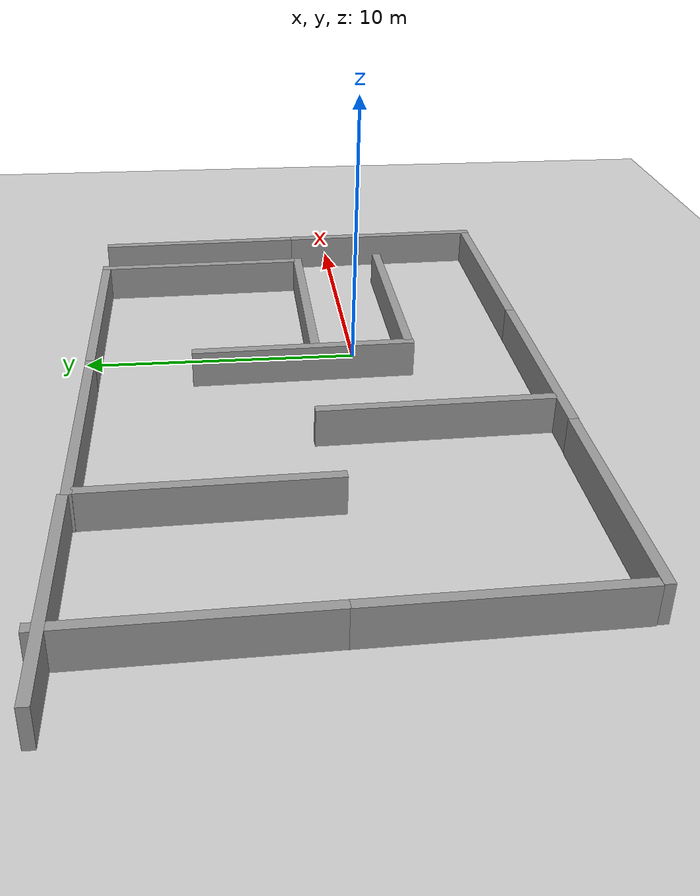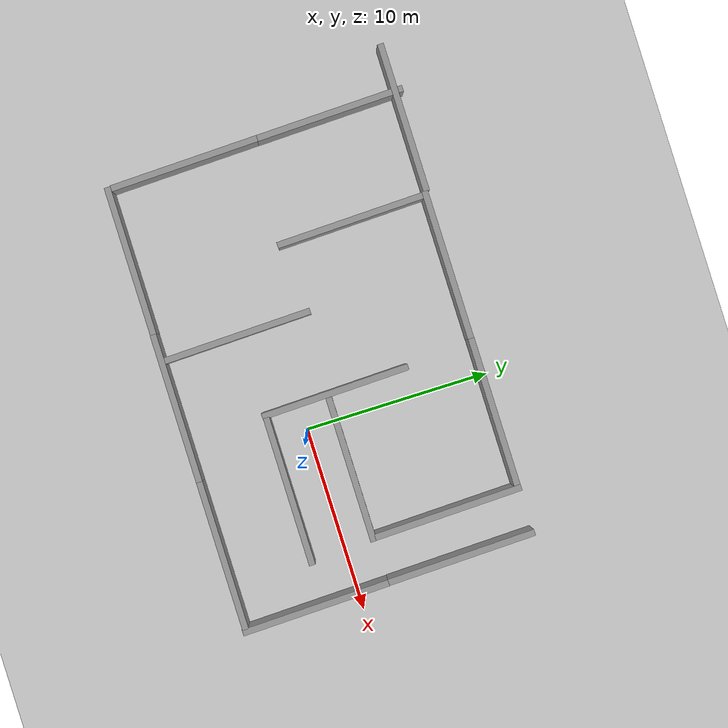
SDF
<sdf version="1.7">
 <world name="default">
  <light name="sun" type="directional">
   <pose>0 0 10 0 -0 0</pose>
   <diffuse>0.8 0.8 0.8 1</diffuse>
   <specular>0.2 0.2 0.2 1</specular>
   <attenuation>
    <range>1000</range>
    <constant>0.9</constant>
    <linear>0.01</linear>
    <quadratic>0.001</quadratic>
   </attenuation>
   <direction>-0.5 0.1 -0.9</direction>
   <spot><inner_angle>0</inner_angle><outer_angle>0</outer_angle><falloff>0</falloff></spot>
  </light>
  <model name="ground_plane">
   <static>1</static>
   <link name="link">
    <collision name="collision">
     <geometry><plane><normal>0 0 1</normal><size>100 100</size></plane></geometry>
     <surface><friction><ode><mu>100</mu><mu2>50</mu2></ode></friction></surface>
    </collision>
    <visual name="visual">
     <cast_shadows>0</cast_shadows>
     <geometry><plane><normal>0 0 1</normal><size>100 100</size></plane></geometry>
     <material>
      <script><uri>file://media/materials/scripts/gazebo.material</uri><name>Gazebo/Grey</name></script>
     </material>
    </visual>
   </link>
  </model>
  <gravity>0 0 -9.8</gravity>
  <magnetic_field>6e-06 2.3e-05 -4.2e-05</magnetic_field>
  <atmosphere type="adiabatic"/>
  <physics type="ode">
   <max_step_size>0.001</max_step_size>
   <real_time_factor>1</real_time_factor>
   <real_time_update_rate>1000</real_time_update_rate>
  </physics>
  <scene><ambient>0.4 0.4 0.4 1</ambient><background>0.7 0.7 0.7 1</background><shadows>1</shadows></scene>
  <audio><device>default</device></audio>
  <spherical_coordinates>
   <surface_model>EARTH_WGS84</surface_model>
   <latitude_deg>0</latitude_deg>
   <longitude_deg>0</longitude_deg>
   <elevation>0</elevation>
   <heading_deg>0</heading_deg>
  </spherical_coordinates>
  <model name="small_map">
   <link name="link_0">
    <inertial>
     <mass>7.16173</mass>
     <inertia><ixx>4.16944</ixx><ixy>0</ixy><ixz>0</ixz><iyy>42.8925</iyy><iyz>0</iyz><izz>38.8602</izz></inertia>
    </inertial>
    <pose>5.41246 -0.214515 -4e-06 0 -0 0</pose>
    <visual name="visual">
     <geometry><box><size>8.06215 0.338937 2.62132</size></box></geometry>
     <material>
      <lighting>1</lighting>
      <script><uri>file://media/materials/scripts/gazebo.material</uri><name>Gazebo/Grey</name></script>
      <shader type="pixel"/>
     </material>
    </visual>
    <collision name="collision">
     <geometry><box><size>8.06215 0.338937 2.62132</size></box></geometry>
     <surface>
      <friction>
       <ode><mu>1</mu><mu2>1</mu2><fdir1>0 0 0</fdir1><slip1>0</slip1><slip2>0</slip2></ode>
       <torsional>
        <coefficient>1</coefficient>
        <patch_radius>0</patch_radius>
        <surface_radius>0</surface_radius>
        <use_patch_radius>1</use_patch_radius>
        <ode><slip>0</slip></ode>
       </torsional>
      </friction>
      <bounce><restitution_coefficient>0</restitution_coefficient><threshold>1e+06</threshold></bounce>
      <contact>
       <collide_without_contact>0</collide_without_contact>
       <collide_without_contact_bitmask>1</collide_without_contact_bitmask>
       <collide_bitmask>1</collide_bitmask>
       <ode>
        <soft_cfm>0</soft_cfm>
        <soft_erp>0.2</soft_erp>
        <kp>1e+13</kp>
        <kd>1</kd>
        <max_vel>0.01</max_vel>
        <min_depth>0</min_depth>
       </ode>
       <bullet>
        <split_impulse>1</split_impulse>
        <split_impulse_penetration_threshold>-0.01</split_impulse_penetration_threshold>
        <soft_cfm>0</soft_cfm>
        <soft_erp>0.2</soft_erp>
        <kp>1e+13</kp>
        <kd>1</kd>
       </bullet>
      </contact>
     </surface>
    </collision>
   </link>
   <link name="link_0_clone">
    <inertial>
     <mass>7.16173</mass>
     <inertia><ixx>4.16944</ixx><ixy>0</ixy><ixz>0</ixz><iyy>42.8925</iyy><iyz>0</iyz><izz>38.8602</izz></inertia>
    </inertial>
    <pose>9.15253 3.94185 -0 0 -0 1.59805</pose>
    <visual name="visual">
     <geometry><box><size>8.06215 0.338937 2.62132</size></box></geometry>
     <material>
      <lighting>1</lighting>
      <script><uri>file://media/materials/scripts/gazebo.material</uri><name>Gazebo/Grey</name></script>
      <shader type="pixel"/>
     </material>
    </visual>
    <collision name="collision">
     <geometry><box><size>8.06215 0.338937 2.62132</size></box></geometry>
     <surface>
      <friction>
       <ode><mu>1</mu><mu2>1</mu2><fdir1>0 0 0</fdir1><slip1>0</slip1><slip2>0</slip2></ode>
       <torsional>
        <coefficient>1</coefficient>
        <patch_radius>0</patch_radius>
        <surface_radius>0</surface_radius>
        <use_patch_radius>1</use_patch_radius>
        <ode><slip>0</slip></ode>
       </torsional>
      </friction>
      <bounce><restitution_coefficient>0</restitution_coefficient><threshold>1e+06</threshold></bounce>
      <contact>
       <collide_without_contact>0</collide_without_contact>
       <collide_without_contact_bitmask>1</collide_without_contact_bitmask>
       <collide_bitmask>1</collide_bitmask>
       <ode>
        <soft_cfm>0</soft_cfm>
        <soft_erp>0.2</soft_erp>
        <kp>1e+13</kp>
        <kd>1</kd>
        <max_vel>0.01</max_vel>
        <min_depth>0</min_depth>
       </ode>
       <bullet>
        <split_impulse>1</split_impulse>
        <split_impulse_penetration_threshold>-0.01</split_impulse_penetration_threshold>
        <soft_cfm>0</soft_cfm>
        <soft_erp>0.2</soft_erp>
        <kp>1e+13</kp>
        <kd>1</kd>
       </bullet>
      </contact>
     </surface>
    </collision>
   </link>
   <link name="link_0_clone_0">
    <inertial>
     <mass>7.16173</mass>
     <inertia><ixx>4.16944</ixx><ixy>0</ixy><ixz>0</ixz><iyy>42.8925</iyy><iyz>0</iyz><izz>38.8602</izz></inertia>
    </inertial>
    <pose>5.62972 -3.64226 -0 0 -0 0</pose>
    <visual name="visual">
     <geometry><box><size>8.06215 0.338937 2.62132</size></box></geometry>
     <material>
      <lighting>1</lighting>
      <script><uri>file://media/materials/scripts/gazebo.material</uri><name>Gazebo/Grey</name></script>
      <shader type="pixel"/>
     </material>
    </visual>
    <collision name="collision">
     <geometry><box><size>8.06215 0.338937 2.62132</size></box></geometry>
     <surface>
      <friction>
       <ode><mu>1</mu><mu2>1</mu2><fdir1>0 0 0</fdir1><slip1>0</slip1><slip2>0</slip2></ode>
       <torsional>
        <coefficient>1</coefficient>
        <patch_radius>0</patch_radius>
        <surface_radius>0</surface_radius>
        <use_patch_radius>1</use_patch_radius>
        <ode><slip>0</slip></ode>
       </torsional>
      </friction>
      <bounce><restitution_coefficient>0</restitution_coefficient><threshold>1e+06</threshold></bounce>
      <contact>
       <collide_without_contact>0</collide_without_contact>
       <collide_without_contact_bitmask>1</collide_without_contact_bitmask>
       <collide_bitmask>1</collide_bitmask>
       <ode>
        <soft_cfm>0</soft_cfm>
        <soft_erp>0.2</soft_erp>
        <kp>1e+13</kp>
        <kd>1</kd>
        <max_vel>0.01</max_vel>
        <min_depth>0</min_depth>
       </ode>
       <bullet>
        <split_impulse>1</split_impulse>
        <split_impulse_penetration_threshold>-0.01</split_impulse_penetration_threshold>
        <soft_cfm>0</soft_cfm>
        <soft_erp>0.2</soft_erp>
        <kp>1e+13</kp>
        <kd>1</kd>
       </bullet>
      </contact>
     </surface>
    </collision>
   </link>
   <link name="link_0_clone_0_clone">
    <inertial>
     <mass>7.16173</mass>
     <inertia><ixx>4.16944</ixx><ixy>0</ixy><ixz>0</ixz><iyy>42.8925</iyy><iyz>0</iyz><izz>38.8602</izz></inertia>
    </inertial>
    <pose>7.788 -7.97623 -0 0 -0 0</pose>
    <visual name="visual">
     <geometry><box><size>8.06215 0.338937 2.62132</size></box></geometry>
     <material>
      <lighting>1</lighting>
      <script><uri>file://media/materials/scripts/gazebo.material</uri><name>Gazebo/Grey</name></script>
      <shader type="pixel"/>
     </material>
    </visual>
    <collision name="collision">
     <geometry><box><size>8.06215 0.338937 2.62132</size></box></geometry>
     <surface>
      <friction>
       <ode><mu>1</mu><mu2>1</mu2><fdir1>0 0 0</fdir1><slip1>0</slip1><slip2>0</slip2></ode>
       <torsional>
        <coefficient>1</coefficient>
        <patch_radius>0</patch_radius>
        <surface_radius>0</surface_radius>
        <use_patch_radius>1</use_patch_radius>
        <ode><slip>0</slip></ode>
       </torsional>
      </friction>
      <bounce><restitution_coefficient>0</restitution_coefficient><threshold>1e+06</threshold></bounce>
      <contact>
       <collide_without_contact>0</collide_without_contact>
       <collide_without_contact_bitmask>1</collide_without_contact_bitmask>
       <collide_bitmask>1</collide_bitmask>
       <ode>
        <soft_cfm>0</soft_cfm>
        <soft_erp>0.2</soft_erp>
        <kp>1e+13</kp>
        <kd>1</kd>
        <max_vel>0.01</max_vel>
        <min_depth>0</min_depth>
       </ode>
       <bullet>
        <split_impulse>1</split_impulse>
        <split_impulse_penetration_threshold>-0.01</split_impulse_penetration_threshold>
        <soft_cfm>0</soft_cfm>
        <soft_erp>0.2</soft_erp>
        <kp>1e+13</kp>
        <kd>1</kd>
       </bullet>
      </contact>
     </surface>
    </collision>
   </link>
   <link name="link_0_clone_0_clone_clone">
    <inertial>
     <mass>7.16173</mass>
     <inertia><ixx>4.16944</ixx><ixy>0</ixy><ixz>0</ixz><iyy>42.8925</iyy><iyz>0</iyz><izz>38.8602</izz></inertia>
    </inertial>
    <pose>-0.270462 -7.97559 -0 0 -0 0</pose>
    <visual name="visual">
     <geometry><box><size>8.06215 0.338937 2.62132</size></box></geometry>
     <material>
      <lighting>1</lighting>
      <script><uri>file://media/materials/scripts/gazebo.material</uri><name>Gazebo/Grey</name></script>
      <shader type="pixel"/>
     </material>
    </visual>
    <collision name="collision">
     <geometry><box><size>8.06215 0.338937 2.62132</size></box></geometry>
     <surface>
      <friction>
       <ode><mu>1</mu><mu2>1</mu2><fdir1>0 0 0</fdir1><slip1>0</slip1><slip2>0</slip2></ode>
       <torsional>
        <coefficient>1</coefficient>
        <patch_radius>0</patch_radius>
        <surface_radius>0</surface_radius>
        <use_patch_radius>1</use_patch_radius>
        <ode><slip>0</slip></ode>
       </torsional>
      </friction>
      <bounce><restitution_coefficient>0</restitution_coefficient><threshold>1e+06</threshold></bounce>
      <contact>
       <collide_without_contact>0</collide_without_contact>
       <collide_without_contact_bitmask>1</collide_without_contact_bitmask>
       <collide_bitmask>1</collide_bitmask>
       <ode>
        <soft_cfm>0</soft_cfm>
        <soft_erp>0.2</soft_erp>
        <kp>1e+13</kp>
        <kd>1</kd>
        <max_vel>0.01</max_vel>
        <min_depth>0</min_depth>
       </ode>
       <bullet>
        <split_impulse>1</split_impulse>
        <split_impulse_penetration_threshold>-0.01</split_impulse_penetration_threshold>
        <soft_cfm>0</soft_cfm>
        <soft_erp>0.2</soft_erp>
        <kp>1e+13</kp>
        <kd>1</kd>
       </bullet>
      </contact>
     </surface>
    </collision>
   </link>
   <link name="link_0_clone_0_clone_clone_clone">
    <inertial>
     <mass>7.16173</mass>
     <inertia><ixx>4.16944</ixx><ixy>0</ixy><ixz>0</ixz><iyy>42.8925</iyy><iyz>0</iyz><izz>38.8602</izz></inertia>
    </inertial>
    <pose>-8.32642 -7.95687 -0 0 -0 0</pose>
    <visual name="visual">
     <geometry><box><size>8.06215 0.338937 2.62132</size></box></geometry>
     <material>
      <lighting>1</lighting>
      <script><uri>file://media/materials/scripts/gazebo.material</uri><name>Gazebo/Grey</name></script>
      <shader type="pixel"/>
     </material>
    </visual>
    <collision name="collision">
     <geometry><box><size>8.06215 0.338937 2.62132</size></box></geometry>
     <surface>
      <friction>
       <ode><mu>1</mu><mu2>1</mu2><fdir1>0 0 0</fdir1><slip1>0</slip1><slip2>0</slip2></ode>
       <torsional>
        <coefficient>1</coefficient>
        <patch_radius>0</patch_radius>
        <surface_radius>0</surface_radius>
        <use_patch_radius>1</use_patch_radius>
        <ode><slip>0</slip></ode>
       </torsional>
      </friction>
      <bounce><restitution_coefficient>0</restitution_coefficient><threshold>1e+06</threshold></bounce>
      <contact>
       <collide_without_contact>0</collide_without_contact>
       <collide_without_contact_bitmask>1</collide_without_contact_bitmask>
       <collide_bitmask>1</collide_bitmask>
       <ode>
        <soft_cfm>0</soft_cfm>
        <soft_erp>0.2</soft_erp>
        <kp>1e+13</kp>
        <kd>1</kd>
        <max_vel>0.01</max_vel>
        <min_depth>0</min_depth>
       </ode>
       <bullet>
        <split_impulse>1</split_impulse>
        <split_impulse_penetration_threshold>-0.01</split_impulse_penetration_threshold>
        <soft_cfm>0</soft_cfm>
        <soft_erp>0.2</soft_erp>
        <kp>1e+13</kp>
        <kd>1</kd>
       </bullet>
      </contact>
     </surface>
    </collision>
   </link>
   <link name="link_0_clone_1">
    <inertial>
     <mass>7.16173</mass>
     <inertia><ixx>4.16944</ixx><ixy>0</ixy><ixz>0</ixz><iyy>42.8925</iyy><iyz>0</iyz><izz>38.8602</izz></inertia>
    </inertial>
    <pose>4.88288 7.80073 -0 0 -0 0</pose>
    <visual name="visual">
     <geometry><box><size>8.06215 0.338937 2.62132</size></box></geometry>
     <material>
      <lighting>1</lighting>
      <script><uri>file://media/materials/scripts/gazebo.material</uri><name>Gazebo/Grey</name></script>
      <shader type="pixel"/>
     </material>
    </visual>
    <collision name="collision">
     <geometry><box><size>8.06215 0.338937 2.62132</size></box></geometry>
     <surface>
      <friction>
       <ode><mu>1</mu><mu2>1</mu2><fdir1>0 0 0</fdir1><slip1>0</slip1><slip2>0</slip2></ode>
       <torsional>
        <coefficient>1</coefficient>
        <patch_radius>0</patch_radius>
        <surface_radius>0</surface_radius>
        <use_patch_radius>1</use_patch_radius>
        <ode><slip>0</slip></ode>
       </torsional>
      </friction>
      <bounce><restitution_coefficient>0</restitution_coefficient><threshold>1e+06</threshold></bounce>
      <contact>
       <collide_without_contact>0</collide_without_contact>
       <collide_without_contact_bitmask>1</collide_without_contact_bitmask>
       <collide_bitmask>1</collide_bitmask>
       <ode>
        <soft_cfm>0</soft_cfm>
        <soft_erp>0.2</soft_erp>
        <kp>1e+13</kp>
        <kd>1</kd>
        <max_vel>0.01</max_vel>
        <min_depth>0</min_depth>
       </ode>
       <bullet>
        <split_impulse>1</split_impulse>
        <split_impulse_penetration_threshold>-0.01</split_impulse_penetration_threshold>
        <soft_cfm>0</soft_cfm>
        <soft_erp>0.2</soft_erp>
        <kp>1e+13</kp>
        <kd>1</kd>
       </bullet>
      </contact>
     </surface>
    </collision>
   </link>
   <link name="link_0_clone_2">
    <inertial>
     <mass>7.16173</mass>
     <inertia><ixx>4.16944</ixx><ixy>0</ixy><ixz>0</ixz><iyy>42.8925</iyy><iyz>0</iyz><izz>38.8602</izz></inertia>
    </inertial>
    <pose>-3.1755 7.79192 -0 0 -0 0</pose>
    <visual name="visual">
     <geometry><box><size>8.06215 0.338937 2.62132</size></box></geometry>
     <material>
      <lighting>1</lighting>
      <script><uri>file://media/materials/scripts/gazebo.material</uri><name>Gazebo/Grey</name></script>
      <shader type="pixel"/>
     </material>
    </visual>
    <collision name="collision">
     <geometry><box><size>8.06215 0.338937 2.62132</size></box></geometry>
     <surface>
      <friction>
       <ode><mu>1</mu><mu2>1</mu2><fdir1>0 0 0</fdir1><slip1>0</slip1><slip2>0</slip2></ode>
       <torsional>
        <coefficient>1</coefficient>
        <patch_radius>0</patch_radius>
        <surface_radius>0</surface_radius>
        <use_patch_radius>1</use_patch_radius>
        <ode><slip>0</slip></ode>
       </torsional>
      </friction>
      <bounce><restitution_coefficient>0</restitution_coefficient><threshold>1e+06</threshold></bounce>
      <contact>
       <collide_without_contact>0</collide_without_contact>
       <collide_without_contact_bitmask>1</collide_without_contact_bitmask>
       <collide_bitmask>1</collide_bitmask>
       <ode>
        <soft_cfm>0</soft_cfm>
        <soft_erp>0.2</soft_erp>
        <kp>1e+13</kp>
        <kd>1</kd>
        <max_vel>0.01</max_vel>
        <min_depth>0</min_depth>
       </ode>
       <bullet>
        <split_impulse>1</split_impulse>
        <split_impulse_penetration_threshold>-0.01</split_impulse_penetration_threshold>
        <soft_cfm>0</soft_cfm>
        <soft_erp>0.2</soft_erp>
        <kp>1e+13</kp>
        <kd>1</kd>
       </bullet>
      </contact>
     </surface>
    </collision>
   </link>
   <link name="link_0_clone_2_clone">
    <inertial>
     <mass>7.16173</mass>
     <inertia><ixx>4.16944</ixx><ixy>0</ixy><ixz>0</ixz><iyy>42.8925</iyy><iyz>0</iyz><izz>38.8602</izz></inertia>
    </inertial>
    <pose>-11.1936 7.8875 -0 0 -0 0</pose>
    <visual name="visual">
     <geometry><box><size>8.06215 0.338937 2.62132</size></box></geometry>
     <material>
      <lighting>1</lighting>
      <script><uri>file://media/materials/scripts/gazebo.material</uri><name>Gazebo/Grey</name></script>
      <shader type="pixel"/>
     </material>
    </visual>
    <collision name="collision">
     <geometry><box><size>8.06215 0.338937 2.62132</size></box></geometry>
     <surface>
      <friction>
       <ode><mu>1</mu><mu2>1</mu2><fdir1>0 0 0</fdir1><slip1>0</slip1><slip2>0</slip2></ode>
       <torsional>
        <coefficient>1</coefficient>
        <patch_radius>0</patch_radius>
        <surface_radius>0</surface_radius>
        <use_patch_radius>1</use_patch_radius>
        <ode><slip>0</slip></ode>
       </torsional>
      </friction>
      <bounce><restitution_coefficient>0</restitution_coefficient><threshold>1e+06</threshold></bounce>
      <contact>
       <collide_without_contact>0</collide_without_contact>
       <collide_without_contact_bitmask>1</collide_without_contact_bitmask>
       <collide_bitmask>1</collide_bitmask>
       <ode>
        <soft_cfm>0</soft_cfm>
        <soft_erp>0.2</soft_erp>
        <kp>1e+13</kp>
        <kd>1</kd>
        <max_vel>0.01</max_vel>
        <min_depth>0</min_depth>
       </ode>
       <bullet>
        <split_impulse>1</split_impulse>
        <split_impulse_penetration_threshold>-0.01</split_impulse_penetration_threshold>
        <soft_cfm>0</soft_cfm>
        <soft_erp>0.2</soft_erp>
        <kp>1e+13</kp>
        <kd>1</kd>
       </bullet>
      </contact>
     </surface>
    </collision>
   </link>
   <link name="link_0_clone_clone">
    <inertial>
     <mass>7.16173</mass>
     <inertia><ixx>4.16944</ixx><ixy>0</ixy><ixz>0</ixz><iyy>42.8925</iyy><iyz>0</iyz><izz>38.8602</izz></inertia>
    </inertial>
    <pose>11.6057 3.90907 -0 0 -0 1.59805</pose>
    <visual name="visual">
     <geometry><box><size>8.06215 0.338937 2.62132</size></box></geometry>
     <material>
      <lighting>1</lighting>
      <script><uri>file://media/materials/scripts/gazebo.material</uri><name>Gazebo/Grey</name></script>
      <shader type="pixel"/>
     </material>
    </visual>
    <collision name="collision">
     <geometry><box><size>8.06215 0.338937 2.62132</size></box></geometry>
     <surface>
      <friction>
       <ode><mu>1</mu><mu2>1</mu2><fdir1>0 0 0</fdir1><slip1>0</slip1><slip2>0</slip2></ode>
       <torsional>
        <coefficient>1</coefficient>
        <patch_radius>0</patch_radius>
        <surface_radius>0</surface_radius>
        <use_patch_radius>1</use_patch_radius>
        <ode><slip>0</slip></ode>
       </torsional>
      </friction>
      <bounce><restitution_coefficient>0</restitution_coefficient><threshold>1e+06</threshold></bounce>
      <contact>
       <collide_without_contact>0</collide_without_contact>
       <collide_without_contact_bitmask>1</collide_without_contact_bitmask>
       <collide_bitmask>1</collide_bitmask>
       <ode>
        <soft_cfm>0</soft_cfm>
        <soft_erp>0.2</soft_erp>
        <kp>1e+13</kp>
        <kd>1</kd>
        <max_vel>0.01</max_vel>
        <min_depth>0</min_depth>
       </ode>
       <bullet>
        <split_impulse>1</split_impulse>
        <split_impulse_penetration_threshold>-0.01</split_impulse_penetration_threshold>
        <soft_cfm>0</soft_cfm>
        <soft_erp>0.2</soft_erp>
        <kp>1e+13</kp>
        <kd>1</kd>
       </bullet>
      </contact>
     </surface>
    </collision>
   </link>
   <link name="link_0_clone_clone_0">
    <inertial>
     <mass>7.16173</mass>
     <inertia><ixx>4.16944</ixx><ixy>0</ixy><ixz>0</ixz><iyy>42.8925</iyy><iyz>0</iyz><izz>38.8602</izz></inertia>
    </inertial>
    <pose>11.8396 -4.13623 -0 0 -0 1.59805</pose>
    <visual name="visual">
     <geometry><box><size>8.06215 0.338937 2.62132</size></box></geometry>
     <material>
      <lighting>1</lighting>
      <script><uri>file://media/materials/scripts/gazebo.material</uri><name>Gazebo/Grey</name></script>
      <shader type="pixel"/>
     </material>
    </visual>
    <collision name="collision">
     <geometry><box><size>8.06215 0.338937 2.62132</size></box></geometry>
     <surface>
      <friction>
       <ode><mu>1</mu><mu2>1</mu2><fdir1>0 0 0</fdir1><slip1>0</slip1><slip2>0</slip2></ode>
       <torsional>
        <coefficient>1</coefficient>
        <patch_radius>0</patch_radius>
        <surface_radius>0</surface_radius>
        <use_patch_radius>1</use_patch_radius>
        <ode><slip>0</slip></ode>
       </torsional>
      </friction>
      <bounce><restitution_coefficient>0</restitution_coefficient><threshold>1e+06</threshold></bounce>
      <contact>
       <collide_without_contact>0</collide_without_contact>
       <collide_without_contact_bitmask>1</collide_without_contact_bitmask>
       <collide_bitmask>1</collide_bitmask>
       <ode>
        <soft_cfm>0</soft_cfm>
        <soft_erp>0.2</soft_erp>
        <kp>1e+13</kp>
        <kd>1</kd>
        <max_vel>0.01</max_vel>
        <min_depth>0</min_depth>
       </ode>
       <bullet>
        <split_impulse>1</split_impulse>
        <split_impulse_penetration_threshold>-0.01</split_impulse_penetration_threshold>
        <soft_cfm>0</soft_cfm>
        <soft_erp>0.2</soft_erp>
        <kp>1e+13</kp>
        <kd>1</kd>
       </bullet>
      </contact>
     </surface>
    </collision>
   </link>
   <link name="link_0_clone_clone_0_clone">
    <inertial>
     <mass>7.16173</mass>
     <inertia><ixx>4.16944</ixx><ixy>0</ixy><ixz>0</ixz><iyy>42.8925</iyy><iyz>0</iyz><izz>38.8602</izz></inertia>
    </inertial>
    <pose>-2.92077 -3.80777 -0 0 -0 1.59805</pose>
    <visual name="visual">
     <geometry><box><size>8.06215 0.338937 2.62132</size></box></geometry>
     <material>
      <lighting>1</lighting>
      <script><uri>file://media/materials/scripts/gazebo.material</uri><name>Gazebo/Grey</name></script>
      <shader type="pixel"/>
     </material>
    </visual>
    <collision name="collision">
     <geometry><box><size>8.06215 0.338937 2.62132</size></box></geometry>
     <surface>
      <friction>
       <ode><mu>1</mu><mu2>1</mu2><fdir1>0 0 0</fdir1><slip1>0</slip1><slip2>0</slip2></ode>
       <torsional>
        <coefficient>1</coefficient>
        <patch_radius>0</patch_radius>
        <surface_radius>0</surface_radius>
        <use_patch_radius>1</use_patch_radius>
        <ode><slip>0</slip></ode>
       </torsional>
      </friction>
      <bounce><restitution_coefficient>0</restitution_coefficient><threshold>1e+06</threshold></bounce>
      <contact>
       <collide_without_contact>0</collide_without_contact>
       <collide_without_contact_bitmask>1</collide_without_contact_bitmask>
       <collide_bitmask>1</collide_bitmask>
       <ode>
        <soft_cfm>0</soft_cfm>
        <soft_erp>0.2</soft_erp>
        <kp>1e+13</kp>
        <kd>1</kd>
        <max_vel>0.01</max_vel>
        <min_depth>0</min_depth>
       </ode>
       <bullet>
        <split_impulse>1</split_impulse>
        <split_impulse_penetration_threshold>-0.01</split_impulse_penetration_threshold>
        <soft_cfm>0</soft_cfm>
        <soft_erp>0.2</soft_erp>
        <kp>1e+13</kp>
        <kd>1</kd>
       </bullet>
      </contact>
     </surface>
    </collision>
   </link>
   <link name="link_0_clone_clone_0_clone_0">
    <inertial>
     <mass>7.16173</mass>
     <inertia><ixx>4.16944</ixx><ixy>0</ixy><ixz>0</ixz><iyy>42.8925</iyy><iyz>0</iyz><izz>38.8602</izz></inertia>
    </inertial>
    <pose>1.38461 0.200147 -0 0 -0 1.59805</pose>
    <visual name="visual">
     <geometry><box><size>8.06215 0.338937 2.62132</size></box></geometry>
     <material>
      <lighting>1</lighting>
      <script><uri>file://media/materials/scripts/gazebo.material</uri><name>Gazebo/Grey</name></script>
      <shader type="pixel"/>
     </material>
    </visual>
    <collision name="collision">
     <geometry><box><size>8.06215 0.338937 2.62132</size></box></geometry>
     <surface>
      <friction>
       <ode><mu>1</mu><mu2>1</mu2><fdir1>0 0 0</fdir1><slip1>0</slip1><slip2>0</slip2></ode>
       <torsional>
        <coefficient>1</coefficient>
        <patch_radius>0</patch_radius>
        <surface_radius>0</surface_radius>
        <use_patch_radius>1</use_patch_radius>
        <ode><slip>0</slip></ode>
       </torsional>
      </friction>
      <bounce><restitution_coefficient>0</restitution_coefficient><threshold>1e+06</threshold></bounce>
      <contact>
       <collide_without_contact>0</collide_without_contact>
       <collide_without_contact_bitmask>1</collide_without_contact_bitmask>
       <collide_bitmask>1</collide_bitmask>
       <ode>
        <soft_cfm>0</soft_cfm>
        <soft_erp>0.2</soft_erp>
        <kp>1e+13</kp>
        <kd>1</kd>
        <max_vel>0.01</max_vel>
        <min_depth>0</min_depth>
       </ode>
       <bullet>
        <split_impulse>1</split_impulse>
        <split_impulse_penetration_threshold>-0.01</split_impulse_penetration_threshold>
        <soft_cfm>0</soft_cfm>
        <soft_erp>0.2</soft_erp>
        <kp>1e+13</kp>
        <kd>1</kd>
       </bullet>
      </contact>
     </surface>
    </collision>
   </link>
   <link name="link_0_clone_clone_0_clone_0_clone">
    <inertial>
     <mass>7.16173</mass>
     <inertia><ixx>4.16944</ixx><ixy>0</ixy><ixz>0</ixz><iyy>42.8925</iyy><iyz>0</iyz><izz>38.8602</izz></inertia>
    </inertial>
    <pose>-12.3411 -3.75215 -0 0 -0 1.59805</pose>
    <visual name="visual">
     <geometry><box><size>8.06215 0.338937 2.62132</size></box></geometry>
     <material>
      <lighting>1</lighting>
      <script><uri>file://media/materials/scripts/gazebo.material</uri><name>Gazebo/Grey</name></script>
      <shader type="pixel"/>
     </material>
    </visual>
    <collision name="collision">
     <geometry><box><size>8.06215 0.338937 2.62132</size></box></geometry>
     <surface>
      <friction>
       <ode><mu>1</mu><mu2>1</mu2><fdir1>0 0 0</fdir1><slip1>0</slip1><slip2>0</slip2></ode>
       <torsional>
        <coefficient>1</coefficient>
        <patch_radius>0</patch_radius>
        <surface_radius>0</surface_radius>
        <use_patch_radius>1</use_patch_radius>
        <ode><slip>0</slip></ode>
       </torsional>
      </friction>
      <bounce><restitution_coefficient>0</restitution_coefficient><threshold>1e+06</threshold></bounce>
      <contact>
       <collide_without_contact>0</collide_without_contact>
       <collide_without_contact_bitmask>1</collide_without_contact_bitmask>
       <collide_bitmask>1</collide_bitmask>
       <ode>
        <soft_cfm>0</soft_cfm>
        <soft_erp>0.2</soft_erp>
        <kp>1e+13</kp>
        <kd>1</kd>
        <max_vel>0.01</max_vel>
        <min_depth>0</min_depth>
       </ode>
       <bullet>
        <split_impulse>1</split_impulse>
        <split_impulse_penetration_threshold>-0.01</split_impulse_penetration_threshold>
        <soft_cfm>0</soft_cfm>
        <soft_erp>0.2</soft_erp>
        <kp>1e+13</kp>
        <kd>1</kd>
       </bullet>
      </contact>
     </surface>
    </collision>
   </link>
   <link name="link_0_clone_clone_0_clone_0_clone_clone">
    <inertial>
     <mass>7.16173</mass>
     <inertia><ixx>4.16944</ixx><ixy>0</ixy><ixz>0</ixz><iyy>42.8925</iyy><iyz>0</iyz><izz>38.8602</izz></inertia>
    </inertial>
    <pose>-12.5582 4.28141 -0 0 -0 1.59805</pose>
    <visual name="visual">
     <geometry><box><size>8.06215 0.338937 2.62132</size></box></geometry>
     <material>
      <lighting>1</lighting>
      <script><uri>file://media/materials/scripts/gazebo.material</uri><name>Gazebo/Grey</name></script>
      <shader type="pixel"/>
     </material>
    </visual>
    <collision name="collision">
     <geometry><box><size>8.06215 0.338937 2.62132</size></box></geometry>
     <surface>
      <friction>
       <ode><mu>1</mu><mu2>1</mu2><fdir1>0 0 0</fdir1><slip1>0</slip1><slip2>0</slip2></ode>
       <torsional>
        <coefficient>1</coefficient>
        <patch_radius>0</patch_radius>
        <surface_radius>0</surface_radius>
        <use_patch_radius>1</use_patch_radius>
        <ode><slip>0</slip></ode>
       </torsional>
      </friction>
      <bounce><restitution_coefficient>0</restitution_coefficient><threshold>1e+06</threshold></bounce>
      <contact>
       <collide_without_contact>0</collide_without_contact>
       <collide_without_contact_bitmask>1</collide_without_contact_bitmask>
       <collide_bitmask>1</collide_bitmask>
       <ode>
        <soft_cfm>0</soft_cfm>
        <soft_erp>0.2</soft_erp>
        <kp>1e+13</kp>
        <kd>1</kd>
        <max_vel>0.01</max_vel>
        <min_depth>0</min_depth>
       </ode>
       <bullet>
        <split_impulse>1</split_impulse>
        <split_impulse_penetration_threshold>-0.01</split_impulse_penetration_threshold>
        <soft_cfm>0</soft_cfm>
        <soft_erp>0.2</soft_erp>
        <kp>1e+13</kp>
        <kd>1</kd>
       </bullet>
      </contact>
     </surface>
    </collision>
   </link>
   <link name="link_0_clone_clone_1">
    <inertial>
     <mass>7.16173</mass>
     <inertia><ixx>4.16944</ixx><ixy>0</ixy><ixz>0</ixz><iyy>42.8925</iyy><iyz>0</iyz><izz>38.8602</izz></inertia>
    </inertial>
    <pose>-6.90939 3.64898 -0 0 -0 1.59805</pose>
    <visual name="visual">
     <geometry><box><size>8.06215 0.338937 2.62132</size></box></geometry>
     <material>
      <lighting>1</lighting>
      <script><uri>file://media/materials/scripts/gazebo.material</uri><name>Gazebo/Grey</name></script>
      <shader type="pixel"/>
     </material>
    </visual>
    <collision name="collision">
     <geometry><box><size>8.06215 0.338937 2.62132</size></box></geometry>
     <surface>
      <friction>
       <ode><mu>1</mu><mu2>1</mu2><fdir1>0 0 0</fdir1><slip1>0</slip1><slip2>0</slip2></ode>
       <torsional>
        <coefficient>1</coefficient>
        <patch_radius>0</patch_radius>
        <surface_radius>0</surface_radius>
        <use_patch_radius>1</use_patch_radius>
        <ode><slip>0</slip></ode>
       </torsional>
      </friction>
      <bounce><restitution_coefficient>0</restitution_coefficient><threshold>1e+06</threshold></bounce>
      <contact>
       <collide_without_contact>0</collide_without_contact>
       <collide_without_contact_bitmask>1</collide_without_contact_bitmask>
       <collide_bitmask>1</collide_bitmask>
       <ode>
        <soft_cfm>0</soft_cfm>
        <soft_erp>0.2</soft_erp>
        <kp>1e+13</kp>
        <kd>1</kd>
        <max_vel>0.01</max_vel>
        <min_depth>0</min_depth>
       </ode>
       <bullet>
        <split_impulse>1</split_impulse>
        <split_impulse_penetration_threshold>-0.01</split_impulse_penetration_threshold>
        <soft_cfm>0</soft_cfm>
        <soft_erp>0.2</soft_erp>
        <kp>1e+13</kp>
        <kd>1</kd>
       </bullet>
      </contact>
     </surface>
    </collision>
   </link>
   <static>1</static>
   <pose>-2.91623 1.80376 0 0 -0 0</pose>
  </model>
 </world>
</sdf>
